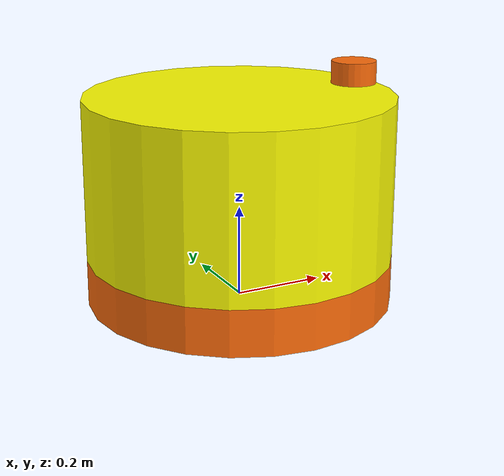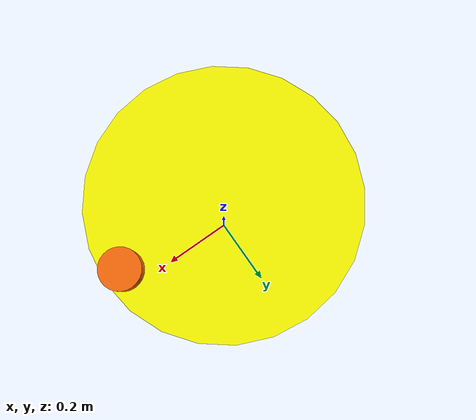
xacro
<?xml version="1.0"?>
<!-- Revolute-Revolute Manipulator -->
<!--
Copied and modified from ROS1 example -
https://github.com/ros-simulation/gazebo_ros_demos/blob/kinetic-devel/rrbot_description/urdf/rrbot.xacro
-->
<robot xmlns:xacro="http://www.ros.org/wiki/xacro" name="2dof_robot">
  <xacro:arg name="prefix" default="" />

  <!-- Import RRBot macro -->
  <xacro:include filename="$(find ros2_control_demo_example_1)/rrbot/urdf/rrbot_description.urdf.xacro" />

  <!-- Import Rviz colors -->
  <xacro:include filename="$(find ros2_control_demo_example_1)/rrbot/urdf/rrbot.materials.xacro" />

  <!-- Import RRBot ros2_control description -->
  <xacro:include filename="$(find ros2_control_demo_example_1)/ros2_control/rrbot.ros2_control.xacro" />

  <!-- Used for fixing robot -->
  <link name="world"/>

  <xacro:rrbot parent="world" prefix="$(arg prefix)">
    <origin xyz="0 0 0" rpy="0 0 0" />
  </xacro:rrbot>

  <xacro:rrbot_ros2_control
    name="RRBot" prefix="$(arg prefix)" />

</robot>

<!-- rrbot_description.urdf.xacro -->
<robot xmlns:xacro="http://www.ros.org/wiki/xacro">

  <xacro:macro name="rrbot" params="parent prefix *origin">

  <!-- Constants for robot dimensions -->
  <xacro:property name="mass" value="1" /> <!-- arbitrary value for mass -->
  <xacro:property name="width" value="0.667" /> <!-- Square dimensions (widthxwidth) of beams -->
  <xacro:property name="height1" value="0.1" /> <!-- Link 1 -->
  <xacro:property name="height2" value="0.35" /> <!-- Link 2 -->

  <joint name="${prefix}base_joint" type="fixed">
    <xacro:insert_block name="origin" />
    <parent link="${parent}"/>
    <child link="${prefix}base_link" />
  </joint>

  <!-- Base Link -->
  <link name="${prefix}base_link">
    <collision>
      <origin xyz="0 0 ${height1/2}" rpy="0 0 0"/>
      <geometry>
        <cylinder radius="${width/2}" length="${height1}"/>
      </geometry>
    </collision>

    <visual>
      <origin xyz="0 0 ${height1/2}" rpy="0 0 0"/>
      <geometry>
        <cylinder radius="${width/2}" length="${height1}"/>
      </geometry>
      <material name="orange"/>
    </visual>

    <inertial>
      <origin xyz="0 0 ${height1/2}" rpy="0 0 0"/>
      <mass value="${mass}"/>
      <inertia
        ixx="${mass / 12.0 * (width*width + height1*height1)}" ixy="0.0" ixz="0.0"
        iyy="${mass / 12.0 * (height1*height1 + width*width)}" iyz="0.0"
        izz="${mass / 12.0 * (width*width + width*width)}"/>
    </inertial>
  </link>

  <joint name="${prefix}joint1" type="continuous">
    <parent link="${prefix}base_link"/>
    <child link="${prefix}link1"/>
    <origin xyz="0 0 ${height1}" rpy="0 0 0"/>
    <axis xyz="0 0 1"/>
    <dynamics damping="0.7"/>
    <limit effort="100" velocity="1.0"/>
  </joint>

  <!-- Middle Link -->
  <link name="${prefix}link1">
    <collision>
      <origin xyz="0 0 ${height2/2}" rpy="0 0 0"/>
      <geometry>
        <cylinder radius="${width/2}" length="${height2}"/>
      </geometry>
    </collision>

    <visual>
      <origin xyz="0 0 ${height2/2}" rpy="0 0 0"/>
      <geometry>
        <cylinder radius="${width/2}" length="${height2}"/>
      </geometry>
      <material name="yellow"/>
    </visual>

    <inertial>
      <origin xyz="0 0 ${height2/2}" rpy="0 0 0"/>
      <mass value="${mass}"/>
      <inertia
        ixx="${mass / 12.0 * (width*width + height2*height2)}" ixy="0.0" ixz="0.0"
        iyy="${mass / 12.0 * (height2*height2 + width*width)}" iyz="0.0"
        izz="${mass / 12.0 * (width*width + width*width)}"/>
    </inertial>
  </link>

  <joint name="${prefix}marker_joint" type="fixed">
    <origin xyz="${width/2-0.05} 0 ${height2+0.05/2}" rpy="0 0 0" />
    <parent link="${prefix}link1"/>
    <child link="${prefix}marker_link" />
  </joint>

  <!-- Marker Link -->
  <link name="${prefix}marker_link">
  <visual>
      <origin xyz="0 0 0" rpy="0 0 0"/>
      <geometry>
        <cylinder radius="0.05" length="0.05"/>
      </geometry>
      <material name="orange"/>
    </visual>
  </link>

  </xacro:macro>

</robot>

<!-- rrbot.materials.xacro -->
<robot>

  <material name="black">
    <color rgba="0.0 0.0 0.0 1.0"/>
  </material>

  <material name="blue">
    <color rgba="0.0 0.0 0.8 1.0"/>
  </material>

  <material name="green">
    <color rgba="0.0 0.8 0.0 1.0"/>
  </material>

  <material name="grey">
    <color rgba="0.2 0.2 0.2 1.0"/>
  </material>

  <material name="orange">
    <color rgba="${255/255} ${108/255} ${10/255} 1.0"/>
  </material>

  <material name="brown">
    <color rgba="${222/255} ${207/255} ${195/255} 1.0"/>
  </material>

  <material name="red">
    <color rgba="0.8 0.0 0.0 1.0"/>
  </material>

  <material name="yellow">
    <color rgba="1.0 1.0 0.0 1.0"/>
  </material>

  <material name="white">
    <color rgba="1.0 1.0 1.0 1.0"/>
  </material>

</robot>
